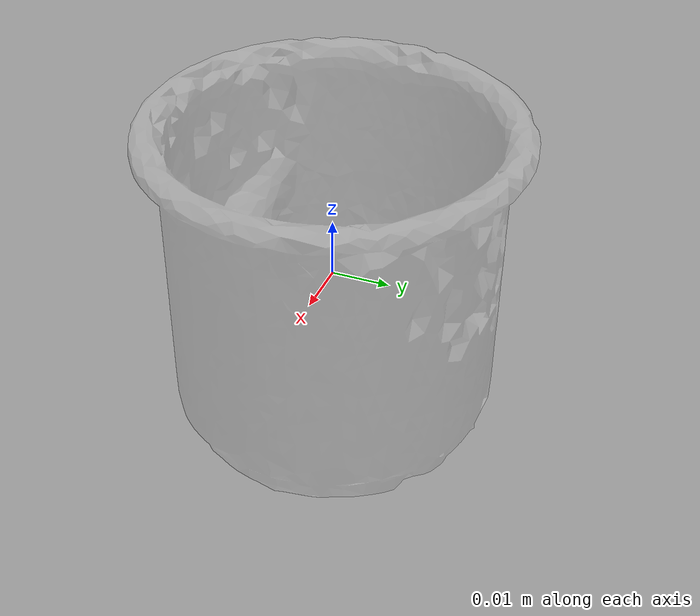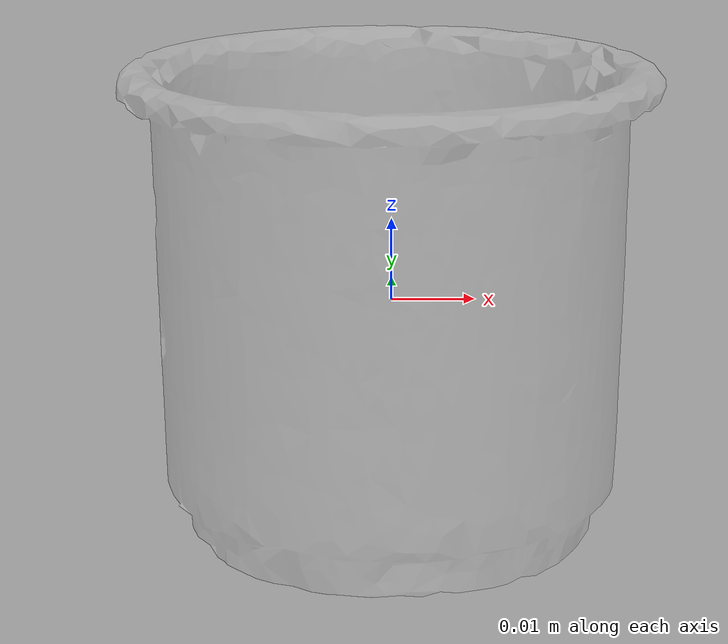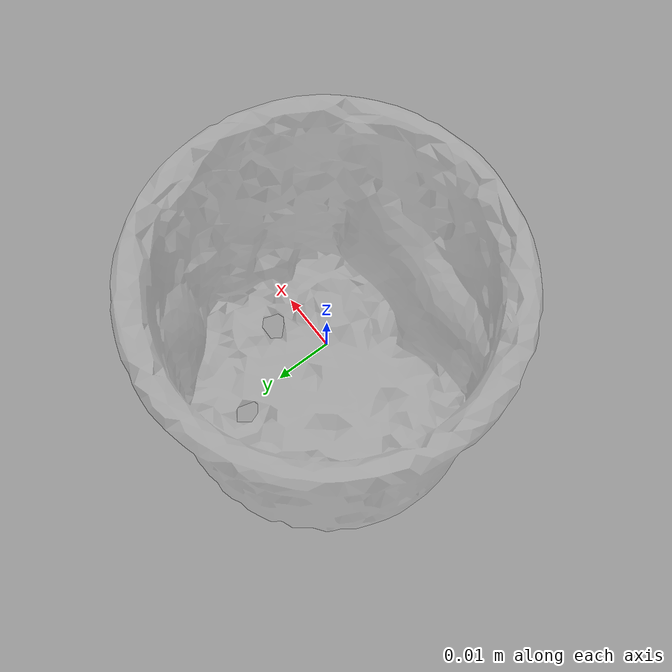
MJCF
<mujoco model="f_cups-visual">
  <asset>
    <mesh name="f_cups_mesh" file="$ADDRESS/google_16k/nontextured.stl" scale="0.8 0.8 0.8"/>
  </asset>
  <worldbody>
    <body>
      <body name="object">
        <geom name="f_cups" pos="0 0 0" mesh="f_cups_mesh" type="mesh" rgba="0.8 0.8 0.8 0.3" conaffinity="0" contype="0" mass="4.948022931304317e-05" friction="0.95 0.3 0.1" group="1" condim="4"/>
      </body>
      <site rgba="0 0 0 0" size="0.005" pos="0 0 -0.045" name="bottom_site"/>
      <site rgba="0 0 0 0" size="0.005" pos="0 0 0.03" name="top_site"/>
      <site rgba="0 0 0 0" size="0.005" pos="0.096 0.096 0" name="horizontal_radius_site"/>
    </body>
  </worldbody>
</mujoco>
